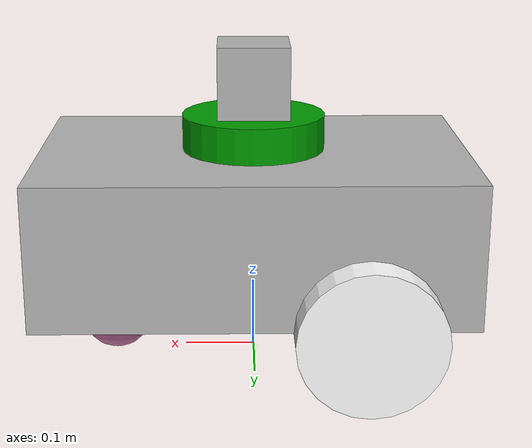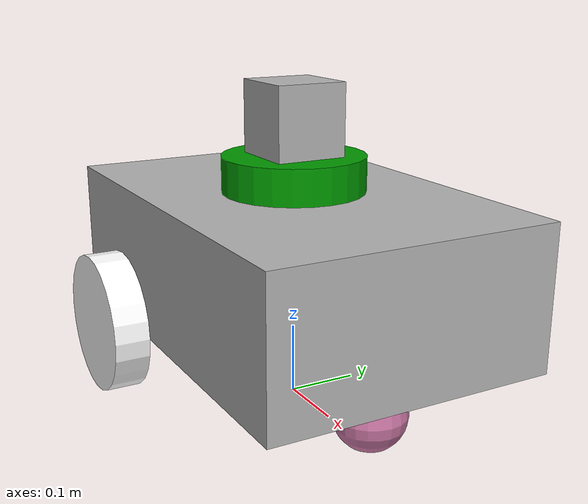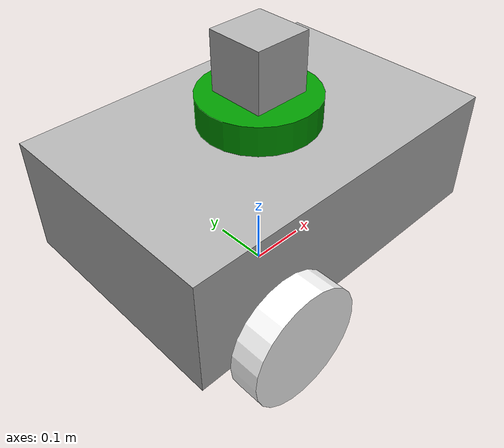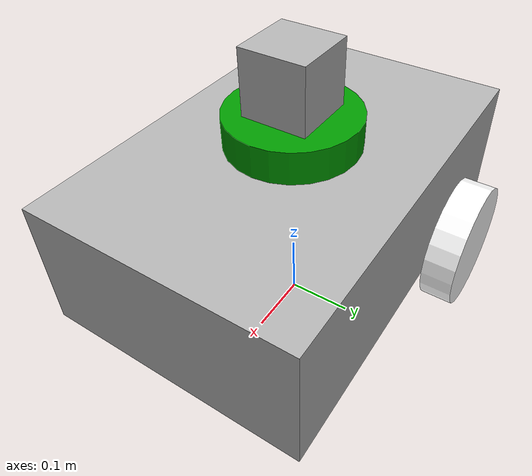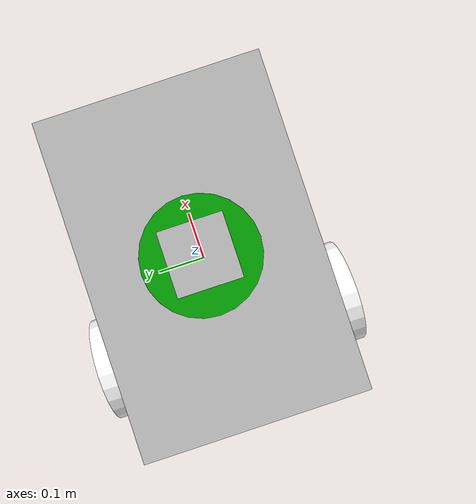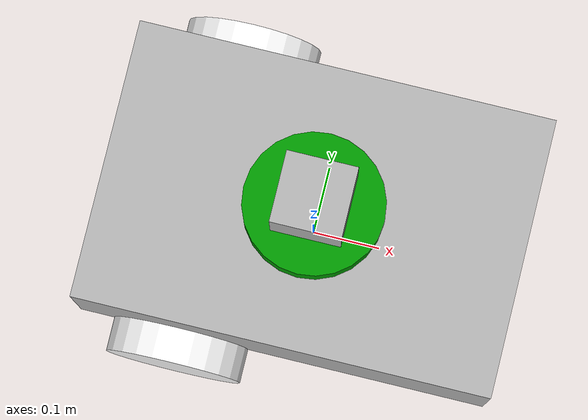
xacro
<?xml version= "1.0"?>

<robot name="my_robot" xmlns:xacro="http://www.ros.org/wiki/xacro">
    <!--by adding above url we can add direct variable-->
    <!--Ex.  ${pi/2} instead of 1.57-->

    <!--creating own constant variable or properties-->
    <xacro:property name="base_length"  value="0.6" />
    <xacro:property name="base_width" value="0.4" />
    <xacro:property name="base_height" value="0.2" />
     <xacro:property name="wheel_radius" value="0.1" />
    <xacro:property name="wheel_length" value="0.05" />

    <!--add colour-->
    <material name ="grey">
        <color rgba="0.7 0.7 0.7 1" />
    </material>

    <material name ="green">
        <color rgba="0 0.6 0 1" />
    </material>

    <material name="white">
        <color rgba="1 1 1 1" />
    </material>

    <link name="base_footprint" />

    <link name ="base_link">
        <visual>
            <geometry>
                <box size="${base_length} ${base_width} ${base_height}" />  <!-- creating box & all values are in meter-->
            </geometry>
            <origin xyz="0 0 ${base_height/2.0}" rpy="0 0 0" /> <!--origin of the box-->
            <material name="grey" />
        </visual>
    </link>
    <!--another link-->
    <link name="lidar_link">
        <visual>
            <geometry>
                <cylinder radius="0.1" length="0.05" />
            </geometry>
            <origin xyz="0 0 0" rpy="0 0 0" />
            <material name="green" />
        </visual>
    </link>

    <!--another addotional link  revolute-->
    <link name="revolute_link">
        <visual>
            <geometry>
                <box size="0.1 0.1 0.1" />
            </geometry>
            <origin xyz="0 0 0" rpy="0 0 0" />
            <material name="grey" />
        </visual>
    </link>

    <!--functions in urdf <== xacro:macro-->
    <xacro:macro name="wheel_link" params="prefix">
        <link name="${prefix}_wheel">
            <visual>
                <geometry>
                    <cylinder radius="${wheel_radius}" length="${wheel_length}" />
                </geometry>
                <origin xyz="0 0 0" rpy="${pi / 2.0} 0 0" />   <!--we want to move wheel 90 deg(1.57 rad) across x-axis-->
                <material name="white" />
            </visual>
        </link>
    </xacro:macro>

    <!--calling the function <== xacro:macro-->
    <xacro:wheel_link prefix="left" />
    <xacro:wheel_link prefix="right" />

    <link name="castor_wheel">
        <visual>
            <geometry>
                <sphere radius="${wheel_radius/2.0}" />
            </geometry>
            <origin xyz="0 0 0" rpy="0 0 0" />

        </visual>
    </link>

    <!--link relationship ==> joint-->
    <joint name ="base_joint" type="fixed">
        <parent link="base_footprint" />
        <child link="base_link" />
        <origin xyz="0 0 ${wheel_radius}" rpy="0 0 0" />
    </joint>

    <joint name="base_lidar_joint" type="fixed">
        <parent link="base_link" />
        <child link="lidar_link" />
        <origin xyz="0 0 0.225" rpy="0 0 0" />
    </joint>

    <joint name="base_left_wheel_joint" type="continuous">
        <parent link="base_link" />
        <child link="left_wheel" />
        <origin xyz="${-base_length / 4.0} ${base_width/2 + wheel_length/2} 0" rpy="0 0 0" />
        <axis xyz="0 1 0" />  <!--rotation around y axis-->
    </joint>

    <joint name="base_right_wheel_joint" type="continuous">
        <parent link="base_link" />
        <child link="right_wheel" />
        <origin xyz="${-base_length / 4.0} ${-(base_width/2 + wheel_length/2)} 0" rpy="0 0 0" />
        <axis xyz="0 1 0" />
    </joint>

    <joint name="base_castor_wheel_joint" type="fixed">
        <parent link="base_link" />
        <child link="castor_wheel" />
        <origin xyz="${base_length / 3.0} 0 ${-wheel_radius/2.0}" rpy="0 0 0" />
        <axis xyz="0 0 0" />
    </joint>

    <joint name="lidar_revolute_joint" type="revolute">
        <parent link="lidar_link" />
        <child link="revolute_link" />
        <origin xyz="0 0 0.075" rpy="0 0 0" />
        <axis xyz="0 0 1" />
        <!--limit is must for revolute joint-->
        <!--limit is -90 to +90 in radian-->
        <limit lower="-1.57" upper="1.57" velocity="100" effort="100" />
    </joint>

</robot>
